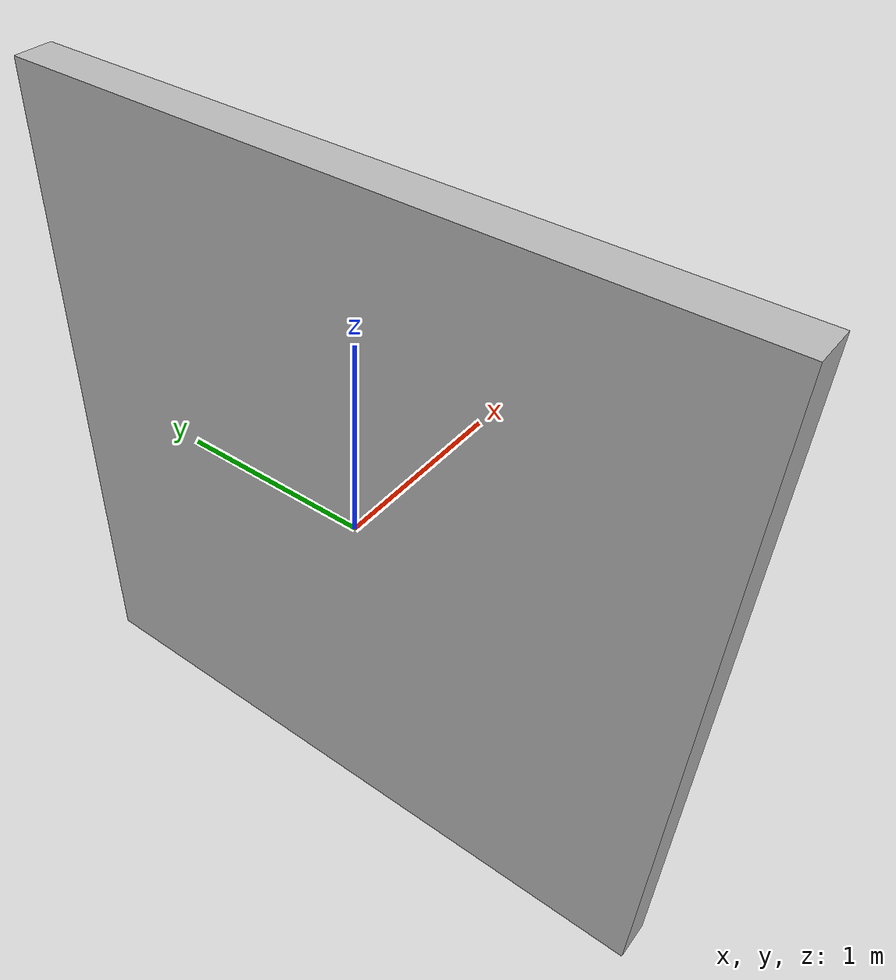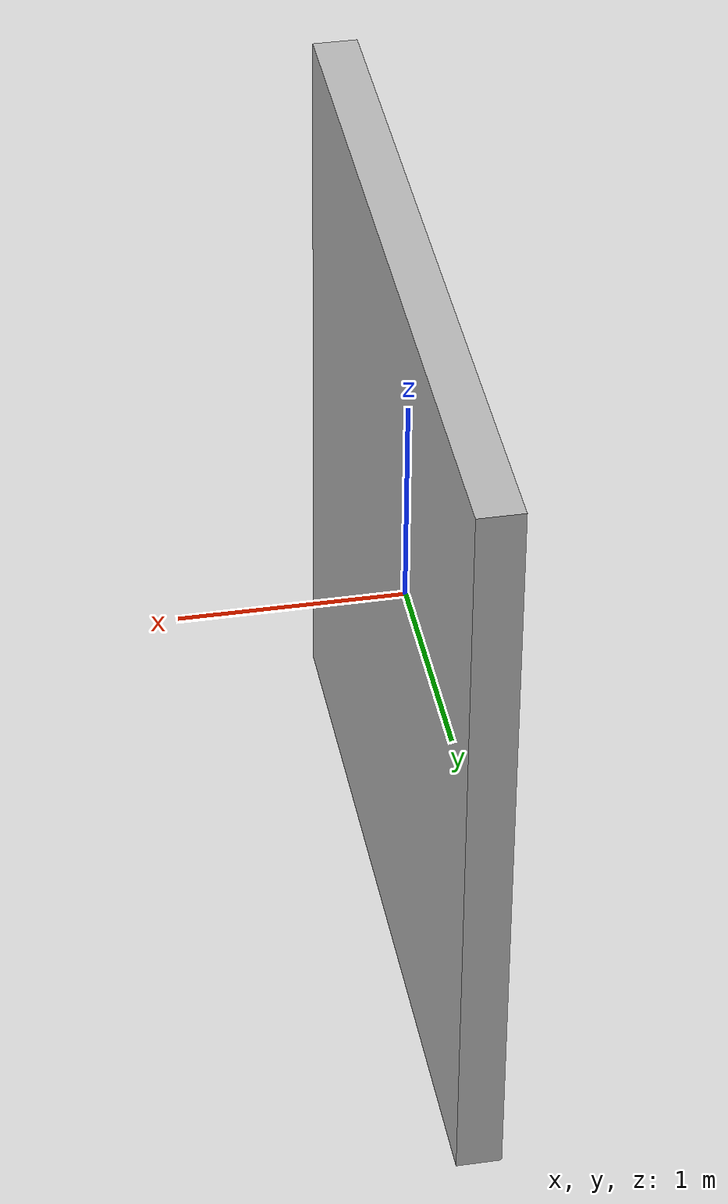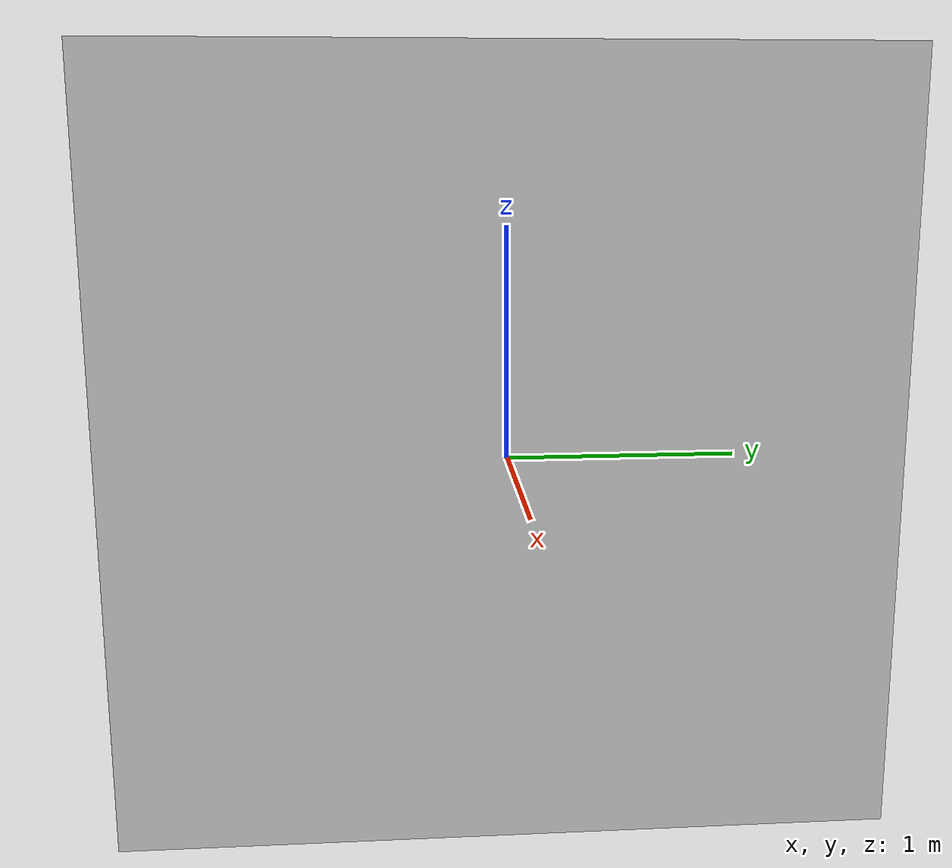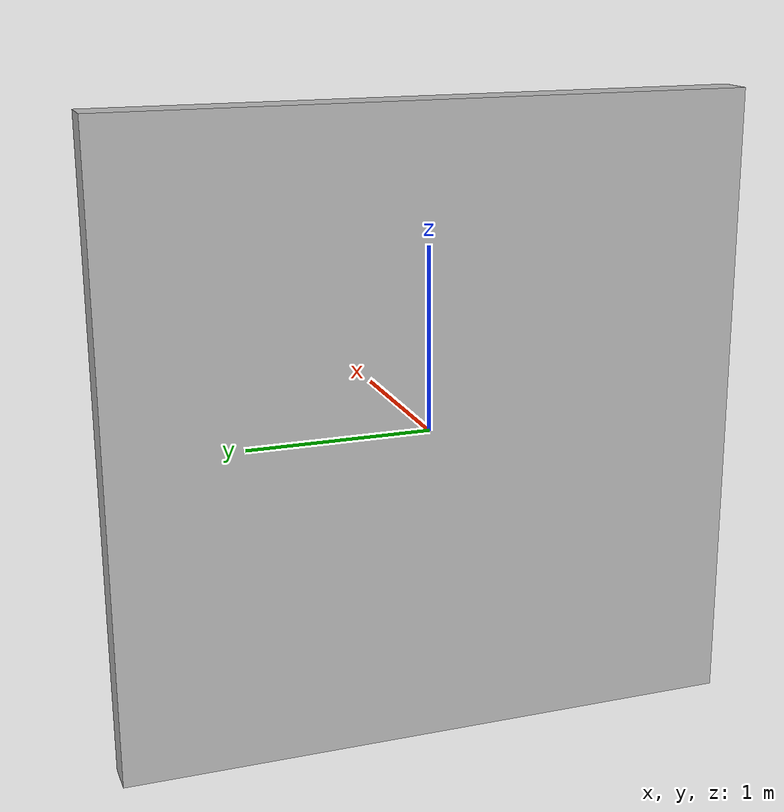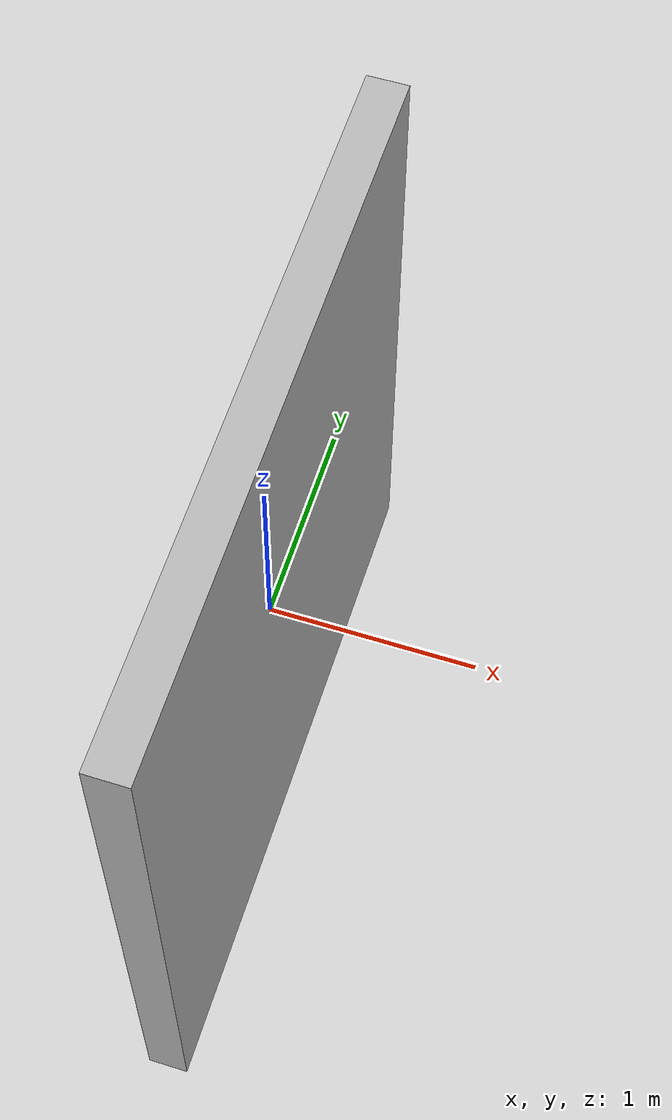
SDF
<?xml version="1.0" ?>
<sdf version="1.5">
  <model name="Brick">
    <static>true</static>
    <link name="link">
      <collision name="collision">
        <geometry>
          <box>
            <size>0.2 3.5 3.5</size>
          </box>
        </geometry>
      </collision>
      <visual name="visual">
        <geometry>
          <box>
            <size>0.2 3.5 3.5</size>
          </box>
        </geometry>
      </visual>
    </link>
  </model>
</sdf>
